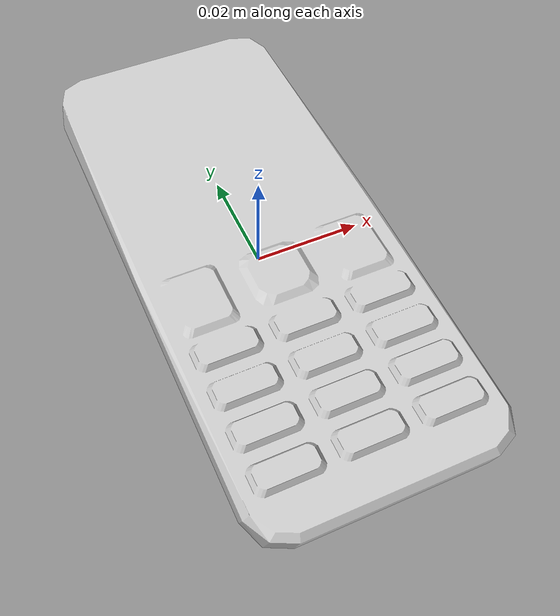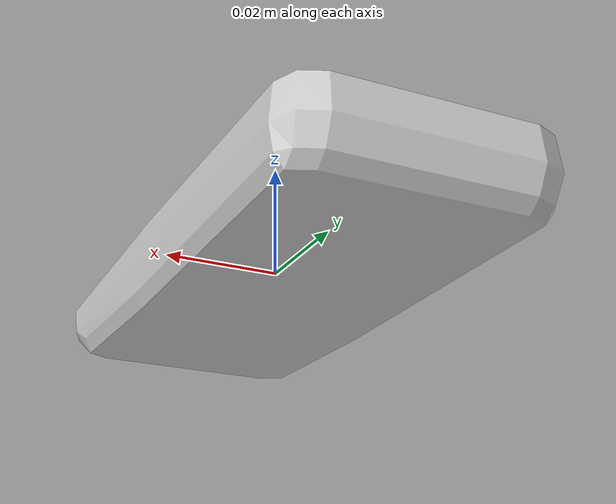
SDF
<?xml version='1.0'?>
<sdf version="1.4">
	<model name="phone2">
		<static>1</static>
		<link name="link">
			<visual name="mesh">
				<geometry>
					<mesh>
						<uri>model://meshes/phone2.dae</uri>
					</mesh>
				</geometry>
			</visual>
			<collision name="collider">
				<pose>0 0 0.0 0 0 0</pose>
				<geometry>
					<box>
						<size>0.046 0.1 0.011</size>
					</box>
				</geometry>
			</collision>
		</link>
	</model>
</sdf>
